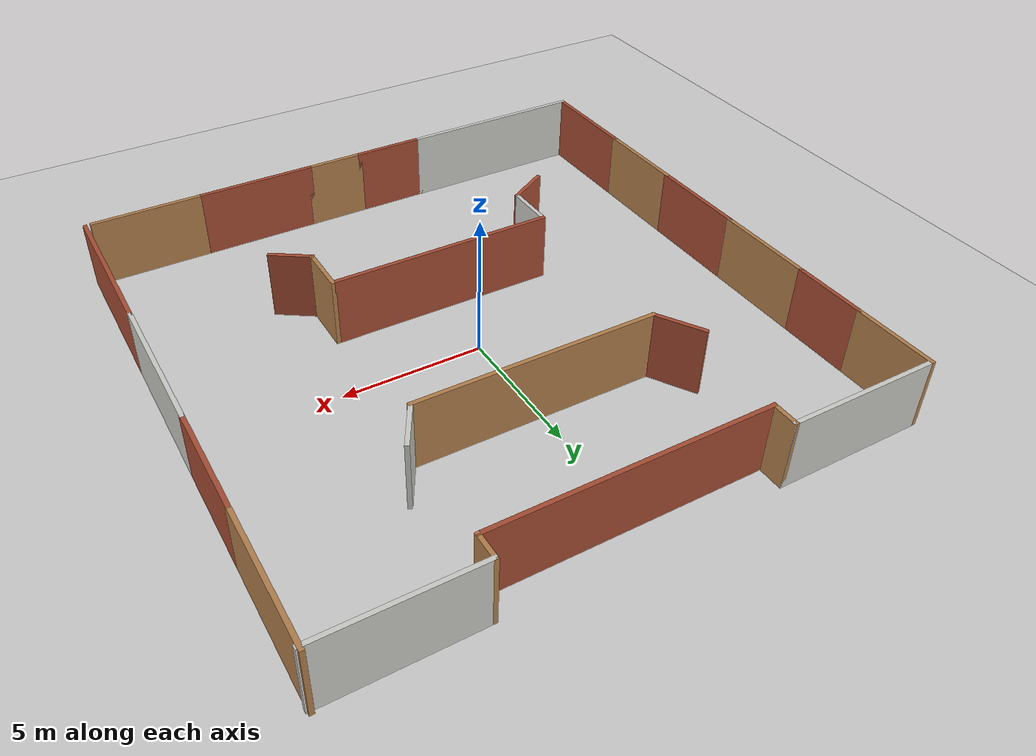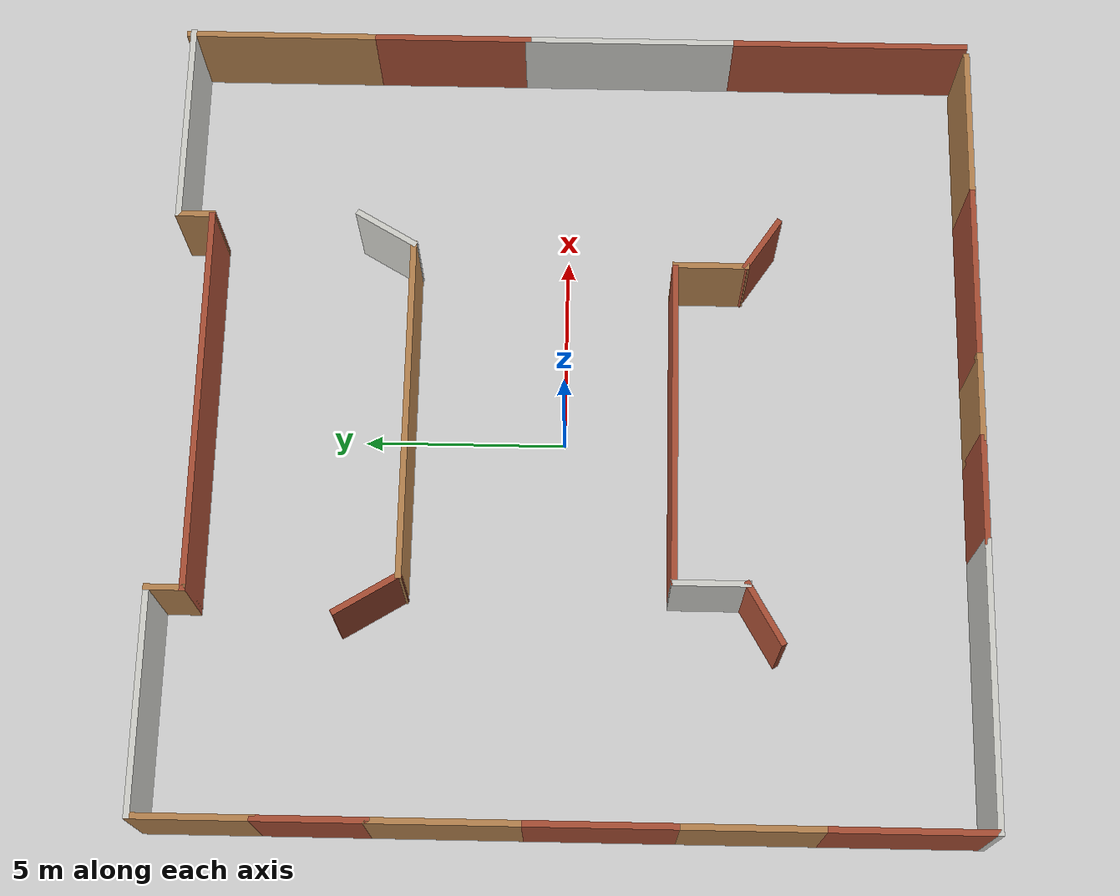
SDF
<sdf version="1.6">
 <world name="default">
  <light name="sun" type="directional">
   <pose>0 0 10 0 -0 0</pose>
   <diffuse>0.8 0.8 0.8 1</diffuse>
   <specular>0.2 0.2 0.2 1</specular>
   <attenuation>
    <range>1000</range>
    <constant>0.9</constant>
    <linear>0.01</linear>
    <quadratic>0.001</quadratic>
   </attenuation>
   <direction>-0.5 0.1 -0.9</direction>
  </light>
  <model name="ground_plane">
   <static>1</static>
   <link name="link">
    <collision name="collision">
     <geometry><plane><normal>0 0 1</normal><size>100 100</size></plane></geometry>
     <surface><friction><ode><mu>100</mu><mu2>50</mu2></ode></friction></surface>
    </collision>
    <visual name="visual">
     <cast_shadows>0</cast_shadows>
     <geometry><plane><normal>0 0 1</normal><size>100 100</size></plane></geometry>
     <material>
      <script><uri>file://media/materials/scripts/gazebo.material</uri><name>Gazebo/Grey</name></script>
     </material>
    </visual>
   </link>
  </model>
  <gravity>0 0 -9.8</gravity>
  <magnetic_field>6e-06 2.3e-05 -4.2e-05</magnetic_field>
  <atmosphere type="adiabatic"/>
  <physics name="default_physics" default="0" type="ode">
   <max_step_size>0.001</max_step_size>
   <real_time_factor>1</real_time_factor>
   <real_time_update_rate>1000</real_time_update_rate>
  </physics>
  <scene><ambient>0.4 0.4 0.4 1</ambient><background>0.7 0.7 0.7 1</background><shadows>1</shadows></scene>
  <spherical_coordinates>
   <surface_model>EARTH_WGS84</surface_model>
   <latitude_deg>0</latitude_deg>
   <longitude_deg>0</longitude_deg>
   <elevation>0</elevation>
   <heading_deg>0</heading_deg>
  </spherical_coordinates>
  <model name="rtab_space">
   <pose>0.22447 -0.119524 0 0 -0 0</pose>
   <link name="Wall_101">
    <collision name="Wall_101_Collision">
     <geometry><box><size>1 0.15 2.5</size></box></geometry>
     <pose>0 0 1.25 0 -0 0</pose>
    </collision>
    <visual name="Wall_101_Visual">
     <pose>0 0 1.25 0 -0 0</pose>
     <geometry><box><size>1 0.15 2.5</size></box></geometry>
     <material>
      <script><uri>file://media/materials/scripts/gazebo.material</uri><name>Gazebo/Wood</name></script>
      <ambient>1 1 1 1</ambient>
     </material>
     <meta><layer>0</layer></meta>
    </visual>
    <pose>-4.675 9.452 0 0 0 -1.5708</pose>
   </link>
   <link name="Wall_102">
    <collision name="Wall_102_Collision">
     <geometry><box><size>9.75 0.15 2.5</size></box></geometry>
     <pose>0 0 1.25 0 -0 0</pose>
    </collision>
    <visual name="Wall_102_Visual">
     <pose>0 0 1.25 0 -0 0</pose>
     <geometry><box><size>9.75 0.15 2.5</size></box></geometry>
     <material>
      <script><uri>file://media/materials/scripts/gazebo.material</uri><name>Gazebo/Bricks</name></script>
      <ambient>1 1 1 1</ambient>
     </material>
     <meta><layer>0</layer></meta>
    </visual>
    <pose>0.125 9.027 0 0 -0 0</pose>
   </link>
   <link name="Wall_103">
    <collision name="Wall_103_Collision">
     <geometry><box><size>1 0.15 2.5</size></box></geometry>
     <pose>0 0 1.25 0 -0 0</pose>
    </collision>
    <visual name="Wall_103_Visual">
     <pose>0 0 1.25 0 -0 0</pose>
     <geometry><box><size>1 0.15 2.5</size></box></geometry>
     <material>
      <script><uri>file://media/materials/scripts/gazebo.material</uri><name>Gazebo/Wood</name></script>
      <ambient>1 1 1 1</ambient>
     </material>
     <meta><layer>0</layer></meta>
    </visual>
    <pose>4.925 9.452 0 0 -0 1.5708</pose>
   </link>
   <link name="Wall_104">
    <collision name="Wall_104_Collision">
     <geometry><box><size>5.25 0.15 2.5</size></box></geometry>
     <pose>0 0 1.25 0 -0 0</pose>
    </collision>
    <visual name="Wall_104_Visual">
     <pose>0 0 1.25 0 -0 0</pose>
     <geometry><box><size>5.25 0.15 2.5</size></box></geometry>
     <material>
      <script><uri>file://media/materials/scripts/gazebo.material</uri><name>Gazebo/CeilingTiled</name></script>
      <ambient>1 1 1 1</ambient>
     </material>
     <meta><layer>0</layer></meta>
    </visual>
    <pose>7.475 9.877 0 0 -0 0</pose>
   </link>
   <link name="Wall_106">
    <collision name="Wall_106_Collision">
     <geometry><box><size>1.87349 0.15 2.5</size></box></geometry>
     <pose>0 0 1.25 0 -0 0</pose>
    </collision>
    <visual name="Wall_106_Visual">
     <pose>0 0 1.25 0 -0 0</pose>
     <geometry><box><size>1.87349 0.15 2.5</size></box></geometry>
     <material>
      <script><uri>file://media/materials/scripts/gazebo.material</uri><name>Gazebo/Bricks</name></script>
      <ambient>1 1 1 1</ambient>
     </material>
     <meta><layer>0</layer></meta>
    </visual>
    <pose>-4.7276 4.69632 0 0 0 -1.01783</pose>
   </link>
   <link name="Wall_107">
    <collision name="Wall_107_Collision">
     <geometry><box><size>8.65 0.15 2.5</size></box></geometry>
     <pose>0 0 1.25 0 -0 0</pose>
    </collision>
    <visual name="Wall_107_Visual">
     <pose>0 0 1.25 0 -0 0</pose>
     <geometry><box><size>8.65 0.15 2.5</size></box></geometry>
     <material>
      <script><uri>file://media/materials/scripts/gazebo.material</uri><name>Gazebo/Wood</name></script>
      <ambient>1 1 1 1</ambient>
     </material>
     <meta><layer>0</layer></meta>
    </visual>
    <pose>-0.025 3.963 0 0 -0 0</pose>
   </link>
   <link name="Wall_108">
    <collision name="Wall_108_Collision">
     <geometry><box><size>1.75 0.15 2.5</size></box></geometry>
     <pose>0 0 1.25 0 -0 0</pose>
    </collision>
    <visual name="Wall_108_Visual">
     <pose>0 0 1.25 0 -0 0</pose>
     <geometry><box><size>1.75 0.15 2.5</size></box></geometry>
     <material>
      <script><uri>file://media/materials/scripts/gazebo.material</uri><name>Gazebo/CeilingTiled</name></script>
      <ambient>1 1 1 1</ambient>
     </material>
     <meta><layer>0</layer></meta>
    </visual>
    <pose>4.625 4.65582 0 0 -0 1.0472</pose>
   </link>
   <link name="Wall_113">
    <collision name="Wall_113_Collision">
     <geometry><box><size>1.75 0.15 2.5</size></box></geometry>
     <pose>0 0 1.25 0 -0 0</pose>
    </collision>
    <visual name="Wall_113_Visual">
     <pose>0 0 1.25 0 -0 0</pose>
     <geometry><box><size>1.75 0.15 2.5</size></box></geometry>
     <material>
      <script><uri>file://media/materials/scripts/gazebo.material</uri><name>Gazebo/Bricks</name></script>
      <ambient>1 1 1 1</ambient>
     </material>
     <meta><layer>0</layer></meta>
    </visual>
    <pose>-5.02082 -4.687 0 0 -0 0.523599</pose>
   </link>
   <link name="Wall_116">
    <collision name="Wall_116_Collision">
     <geometry><box><size>1.891 0.15 2.5</size></box></geometry>
     <pose>0 0 1.25 0 -0 0</pose>
    </collision>
    <visual name="Wall_116_Visual">
     <pose>0 0 1.25 0 -0 0</pose>
     <geometry><box><size>1.891 0.15 2.5</size></box></geometry>
     <material>
      <script><uri>file://media/materials/scripts/gazebo.material</uri><name>Gazebo/CeilingTiled</name></script>
      <ambient>1 1 1 1</ambient>
     </material>
     <meta><layer>0</layer></meta>
    </visual>
    <pose>-4.328 -3.4165 0 0 -0 1.5708</pose>
   </link>
   <link name="Wall_117">
    <collision name="Wall_117_Collision">
     <geometry><box><size>8.25 0.15 2.5</size></box></geometry>
     <pose>0 0 1.25 0 -0 0</pose>
    </collision>
    <visual name="Wall_117_Visual">
     <pose>0 0 1.25 0 -0 0</pose>
     <geometry><box><size>8.25 0.15 2.5</size></box></geometry>
     <material>
      <script><uri>file://media/materials/scripts/gazebo.material</uri><name>Gazebo/Bricks</name></script>
      <ambient>1 1 1 1</ambient>
     </material>
     <meta><layer>0</layer></meta>
    </visual>
    <pose>-0.278 -2.546 0 0 -0 0</pose>
   </link>
   <link name="Wall_118">
    <collision name="Wall_118_Collision">
     <geometry><box><size>1.891 0.15 2.5</size></box></geometry>
     <pose>0 0 1.25 0 -0 0</pose>
    </collision>
    <visual name="Wall_118_Visual">
     <pose>0 0 1.25 0 -0 0</pose>
     <geometry><box><size>1.891 0.15 2.5</size></box></geometry>
     <material>
      <script><uri>file://media/materials/scripts/gazebo.material</uri><name>Gazebo/Wood</name></script>
      <ambient>1 1 1 1</ambient>
     </material>
     <meta><layer>0</layer></meta>
    </visual>
    <pose>3.772 -3.4165 0 0 0 -1.5708</pose>
   </link>
   <link name="Wall_119">
    <collision name="Wall_119_Collision">
     <geometry><box><size>1.6 0.15 2.5</size></box></geometry>
     <pose>0 0 1.25 0 -0 0</pose>
    </collision>
    <visual name="Wall_119_Visual">
     <pose>0 0 1.25 0 -0 0</pose>
     <geometry><box><size>1.6 0.15 2.5</size></box></geometry>
     <material>
      <script><uri>file://media/materials/scripts/gazebo.material</uri><name>Gazebo/Bricks</name></script>
      <ambient>1 1 1 1</ambient>
     </material>
     <meta><layer>0</layer></meta>
    </visual>
    <pose>4.374 -4.691 0 0 0 -0.591063</pose>
   </link>
   <link name="Wall_34">
    <collision name="Wall_34_Collision">
     <geometry><box><size>4 0.15 2.5</size></box></geometry>
     <pose>0 0 1.25 0 -0 0</pose>
    </collision>
    <visual name="Wall_34_Visual">
     <pose>0 0 1.25 0 -0 0</pose>
     <geometry><box><size>4 0.15 2.5</size></box></geometry>
     <material>
      <script><uri>file://media/materials/scripts/gazebo.material</uri><name>Gazebo/Bricks</name></script>
      <ambient>1 1 1 1</ambient>
     </material>
     <meta><layer>0</layer></meta>
    </visual>
    <pose>-10.025 -8.048 0 0 -0 1.5708</pose>
   </link>
   <link name="Wall_35">
    <collision name="Wall_35_Collision">
     <geometry><box><size>3.5 0.15 2.5</size></box></geometry>
     <pose>0 0 1.25 0 -0 0</pose>
    </collision>
    <visual name="Wall_35_Visual">
     <pose>0 0 1.25 0 -0 0</pose>
     <geometry><box><size>3.5 0.15 2.5</size></box></geometry>
     <material>
      <script><uri>file://media/materials/scripts/gazebo.material</uri><name>Gazebo/Wood</name></script>
      <ambient>1 1 1 1</ambient>
     </material>
     <meta><layer>0</layer></meta>
    </visual>
    <pose>-10.025 -4.448 0 0 -0 1.5708</pose>
   </link>
   <link name="Wall_36">
    <collision name="Wall_36_Collision">
     <geometry><box><size>3.75 0.15 2.5</size></box></geometry>
     <pose>0 0 1.25 0 -0 0</pose>
    </collision>
    <visual name="Wall_36_Visual">
     <pose>0 0 1.25 0 -0 0</pose>
     <geometry><box><size>3.75 0.15 2.5</size></box></geometry>
     <material>
      <script><uri>file://media/materials/scripts/gazebo.material</uri><name>Gazebo/Bricks</name></script>
      <ambient>1 1 1 1</ambient>
     </material>
     <meta><layer>0</layer></meta>
    </visual>
    <pose>-10.025 -0.973 0 0 -0 1.5708</pose>
   </link>
   <link name="Wall_37">
    <collision name="Wall_37_Collision">
     <geometry><box><size>3.75 0.15 2.5</size></box></geometry>
     <pose>0 0 1.25 0 -0 0</pose>
    </collision>
    <visual name="Wall_37_Visual">
     <pose>0 0 1.25 0 -0 0</pose>
     <geometry><box><size>3.75 0.15 2.5</size></box></geometry>
     <material>
      <script><uri>file://media/materials/scripts/gazebo.material</uri><name>Gazebo/Wood</name></script>
      <ambient>1 1 1 1</ambient>
     </material>
     <meta><layer>0</layer></meta>
    </visual>
    <pose>-10.025 2.627 0 0 -0 1.5708</pose>
   </link>
   <link name="Wall_38">
    <collision name="Wall_38_Collision">
     <geometry><box><size>2.75 0.15 2.5</size></box></geometry>
     <pose>0 0 1.25 0 -0 0</pose>
    </collision>
    <visual name="Wall_38_Visual">
     <pose>0 0 1.25 0 -0 0</pose>
     <geometry><box><size>2.75 0.15 2.5</size></box></geometry>
     <material>
      <script><uri>file://media/materials/scripts/gazebo.material</uri><name>Gazebo/Bricks</name></script>
      <ambient>1 1 1 1</ambient>
     </material>
     <meta><layer>0</layer></meta>
    </visual>
    <pose>-10.025 5.727 0 0 -0 1.5708</pose>
   </link>
   <link name="Wall_39">
    <collision name="Wall_39_Collision">
     <geometry><box><size>3 0.15 2.5</size></box></geometry>
     <pose>0 0 1.25 0 -0 0</pose>
    </collision>
    <visual name="Wall_39_Visual">
     <pose>0 0 1.25 0 -0 0</pose>
     <geometry><box><size>3 0.15 2.5</size></box></geometry>
     <material>
      <script><uri>file://media/materials/scripts/gazebo.material</uri><name>Gazebo/Wood</name></script>
      <ambient>1 1 1 1</ambient>
     </material>
     <meta><layer>0</layer></meta>
    </visual>
    <pose>-10.025 8.452 0 0 -0 1.5708</pose>
   </link>
   <link name="Wall_41">
    <collision name="Wall_41_Collision">
     <geometry><box><size>6 0.15 2.5</size></box></geometry>
     <pose>0 0 1.25 0 -0 0</pose>
    </collision>
    <visual name="Wall_41_Visual">
     <pose>0 0 1.25 0 -0 0</pose>
     <geometry><box><size>6 0.15 2.5</size></box></geometry>
     <material>
      <script><uri>file://media/materials/scripts/gazebo.material</uri><name>Gazebo/Bricks</name></script>
      <ambient>1 1 1 1</ambient>
     </material>
     <meta><layer>0</layer></meta>
    </visual>
    <pose>9.975 -7.002 0 0 -0 1.5708</pose>
   </link>
   <link name="Wall_42">
    <collision name="Wall_42_Collision">
     <geometry><box><size>5.5 0.15 2.5</size></box></geometry>
     <pose>0 0 1.25 0 -0 0</pose>
    </collision>
    <visual name="Wall_42_Visual">
     <pose>0 0 1.25 0 -0 0</pose>
     <geometry><box><size>5.5 0.15 2.5</size></box></geometry>
     <material>
      <script><uri>file://media/materials/scripts/gazebo.material</uri><name>Gazebo/CeilingTiled</name></script>
      <ambient>1 1 1 1</ambient>
     </material>
     <meta><layer>0</layer></meta>
    </visual>
    <pose>9.975 -1.402 0 0 -0 1.5708</pose>
   </link>
   <link name="Wall_43">
    <collision name="Wall_43_Collision">
     <geometry><box><size>4 0.15 2.5</size></box></geometry>
     <pose>0 0 1.25 0 -0 0</pose>
    </collision>
    <visual name="Wall_43_Visual">
     <pose>0 0 1.25 0 -0 0</pose>
     <geometry><box><size>4 0.15 2.5</size></box></geometry>
     <material>
      <script><uri>file://media/materials/scripts/gazebo.material</uri><name>Gazebo/Bricks</name></script>
      <ambient>1 1 1 1</ambient>
     </material>
     <meta><layer>0</layer></meta>
    </visual>
    <pose>9.975 3.198 0 0 -0 1.5708</pose>
   </link>
   <link name="Wall_44">
    <collision name="Wall_44_Collision">
     <geometry><box><size>5 0.15 2.5</size></box></geometry>
     <pose>0 0 1.25 0 -0 0</pose>
    </collision>
    <visual name="Wall_44_Visual">
     <pose>0 0 1.25 0 -0 0</pose>
     <geometry><box><size>5 0.15 2.5</size></box></geometry>
     <material>
      <script><uri>file://media/materials/scripts/gazebo.material</uri><name>Gazebo/Wood</name></script>
      <ambient>1 1 1 1</ambient>
     </material>
     <meta><layer>0</layer></meta>
    </visual>
    <pose>9.975 7.548 0 0 -0 1.5708</pose>
   </link>
   <link name="Wall_46">
    <collision name="Wall_46_Collision">
     <geometry><box><size>7 0.15 2.5</size></box></geometry>
     <pose>0 0 1.25 0 -0 0</pose>
    </collision>
    <visual name="Wall_46_Visual">
     <pose>0 0 1.25 0 -0 0</pose>
     <geometry><box><size>7 0.15 2.5</size></box></geometry>
     <material>
      <script><uri>file://media/materials/scripts/gazebo.material</uri><name>Gazebo/CeilingTiled</name></script>
      <ambient>1 1 1 1</ambient>
     </material>
     <meta><layer>0</layer></meta>
    </visual>
    <pose>-6.6 -9.973 0 0 -0 0</pose>
   </link>
   <link name="Wall_47">
    <collision name="Wall_47_Collision">
     <geometry><box><size>2.75 0.15 2.5</size></box></geometry>
     <pose>0 0 1.25 0 -0 0</pose>
    </collision>
    <visual name="Wall_47_Visual">
     <pose>0 0 1.25 0 -0 0</pose>
     <geometry><box><size>2.75 0.15 2.5</size></box></geometry>
     <material>
      <script><uri>file://media/materials/scripts/gazebo.material</uri><name>Gazebo/Bricks</name></script>
      <ambient>1 1 1 1</ambient>
     </material>
     <meta><layer>0</layer></meta>
    </visual>
    <pose>-1.875 -9.973 0 0 -0 0</pose>
   </link>
   <link name="Wall_48">
    <collision name="Wall_48_Collision">
     <geometry><box><size>2.25 0.15 2.5</size></box></geometry>
     <pose>0 0 1.25 0 -0 0</pose>
    </collision>
    <visual name="Wall_48_Visual">
     <pose>0 0 1.25 0 -0 0</pose>
     <geometry><box><size>2.25 0.15 2.5</size></box></geometry>
     <material>
      <script><uri>file://media/materials/scripts/gazebo.material</uri><name>Gazebo/Wood</name></script>
      <ambient>1 1 1 1</ambient>
     </material>
     <meta><layer>0</layer></meta>
    </visual>
    <pose>0.475 -9.973 0 0 -0 0</pose>
   </link>
   <link name="Wall_49">
    <collision name="Wall_49_Collision">
     <geometry><box><size>4.5 0.15 2.5</size></box></geometry>
     <pose>0 0 1.25 0 -0 0</pose>
    </collision>
    <visual name="Wall_49_Visual">
     <pose>0 0 1.25 0 -0 0</pose>
     <geometry><box><size>4.5 0.15 2.5</size></box></geometry>
     <material>
      <script><uri>file://media/materials/scripts/gazebo.material</uri><name>Gazebo/Bricks</name></script>
      <ambient>1 1 1 1</ambient>
     </material>
     <meta><layer>0</layer></meta>
    </visual>
    <pose>3.7 -9.973 0 0 -0 0</pose>
   </link>
   <link name="Wall_50">
    <collision name="Wall_50_Collision">
     <geometry><box><size>4 0.15 2.5</size></box></geometry>
     <pose>0 0 1.25 0 -0 0</pose>
    </collision>
    <visual name="Wall_50_Visual">
     <pose>0 0 1.25 0 -0 0</pose>
     <geometry><box><size>4 0.15 2.5</size></box></geometry>
     <material>
      <script><uri>file://media/materials/scripts/gazebo.material</uri><name>Gazebo/Wood</name></script>
      <ambient>1 1 1 1</ambient>
     </material>
     <meta><layer>0</layer></meta>
    </visual>
    <pose>7.8 -9.973 0 0 -0 0</pose>
   </link>
   <link name="Wall_99">
    <collision name="Wall_99_Collision">
     <geometry><box><size>5.5 0.15 2.5</size></box></geometry>
     <pose>0 0 1.25 0 -0 0</pose>
    </collision>
    <visual name="Wall_99_Visual">
     <pose>0 0 1.25 0 -0 0</pose>
     <geometry><box><size>5.5 0.15 2.5</size></box></geometry>
     <material>
      <script><uri>file://media/materials/scripts/gazebo.material</uri><name>Gazebo/CeilingTiled</name></script>
      <ambient>1 1 1 1</ambient>
     </material>
     <meta><layer>0</layer></meta>
    </visual>
    <pose>-7.35 9.877 0 0 -0 0</pose>
   </link>
   <static>1</static>
  </model>
 </world>
</sdf>
